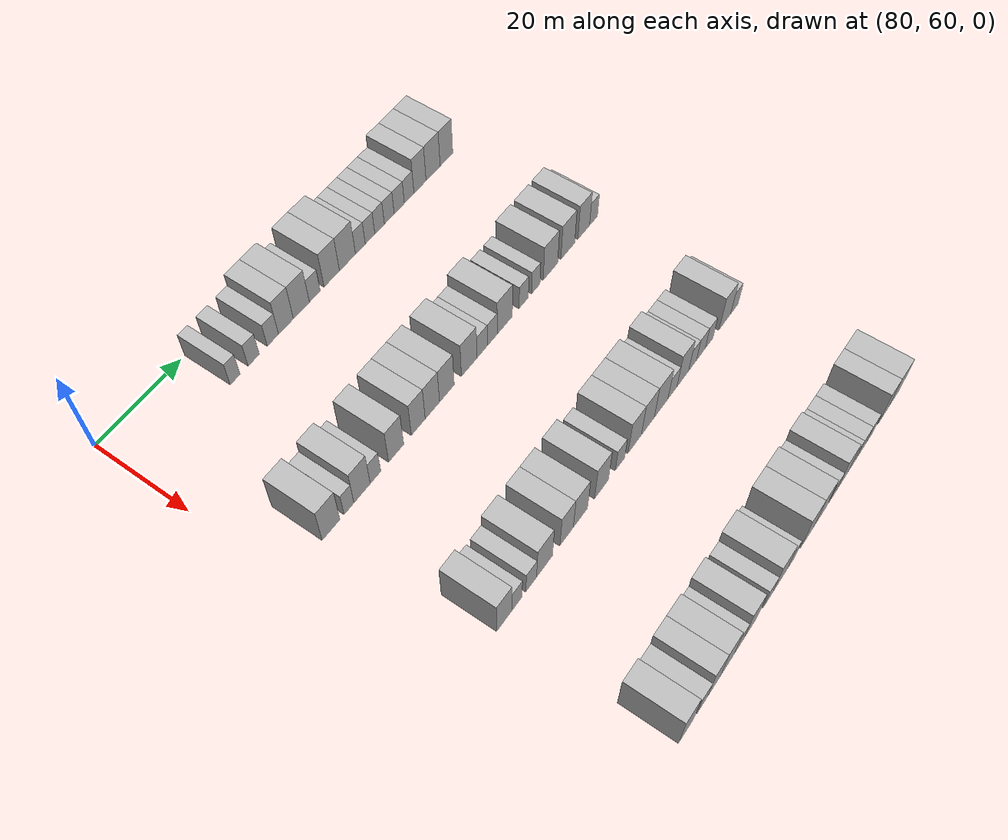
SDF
<sdf version="1.6">
 <world name="default">
  <model name="building_585">
   <static>1</static>
   <pose>85.0000 82.1255 0 0.000000 0.000000 0.000000</pose>
   <link name="link">
    <pose>0 0 3.00 0 0 0</pose>
    <collision name="collision"><geometry><box><size>10.0000 2.4287 6.0000</size></box></geometry></collision>
    <visual name="visual">
     <cast_shadows>0</cast_shadows>
     <geometry><box><size>10.0000 2.4287 6.0000</size></box></geometry>
     <material>
      <script>
       <uri>model://HANNAS_wall/materials/scripts</uri>
       <uri>model://HANNAS_wall/materials/textures</uri>
       <name>vrc/HANNAS_wall</name>
      </script>
     </material>
    </visual>
   </link>
  </model>
  <model name="building_586">
   <static>1</static>
   <pose>85.0000 86.7461 0 0.000000 0.000000 0.000000</pose>
   <link name="link">
    <pose>0 0 3.00 0 0 0</pose>
    <collision name="collision"><geometry><box><size>10.0000 2.8125 6.0000</size></box></geometry></collision>
    <visual name="visual">
     <cast_shadows>0</cast_shadows>
     <geometry><box><size>10.0000 2.8125 6.0000</size></box></geometry>
     <material>
      <script>
       <uri>model://HANNAS_wall/materials/scripts</uri>
       <uri>model://HANNAS_wall/materials/textures</uri>
       <name>vrc/HANNAS_wall</name>
      </script>
     </material>
    </visual>
   </link>
  </model>
  <model name="building_587">
   <static>1</static>
   <pose>85.0000 91.5967 0 0.000000 0.000000 0.000000</pose>
   <link name="link">
    <pose>0 0 3.00 0 0 0</pose>
    <collision name="collision"><geometry><box><size>10.0000 2.8886 6.0000</size></box></geometry></collision>
    <visual name="visual">
     <cast_shadows>0</cast_shadows>
     <geometry><box><size>10.0000 2.8886 6.0000</size></box></geometry>
     <material>
      <script>
       <uri>model://HANNAS_wall/materials/scripts</uri>
       <uri>model://HANNAS_wall/materials/textures</uri>
       <name>vrc/HANNAS_wall</name>
      </script>
     </material>
    </visual>
   </link>
  </model>
  <model name="building_588">
   <static>1</static>
   <pose>85.0000 94.9710 0 0.000000 0.000000 0.000000</pose>
   <link name="link">
    <pose>0 0 4.50 0 0 0</pose>
    <collision name="collision"><geometry><box><size>10.0000 3.8599 9.0000</size></box></geometry></collision>
    <visual name="visual">
     <cast_shadows>0</cast_shadows>
     <geometry><box><size>10.0000 3.8599 9.0000</size></box></geometry>
     <material>
      <script>
       <uri>model://HANNAS_wall/materials/scripts</uri>
       <uri>model://HANNAS_wall/materials/textures</uri>
       <name>vrc/HANNAS_wall</name>
      </script>
     </material>
    </visual>
   </link>
  </model>
  <model name="building_589">
   <static>1</static>
   <pose>85.0000 99.0133 0 0.000000 0.000000 0.000000</pose>
   <link name="link">
    <pose>0 0 4.50 0 0 0</pose>
    <collision name="collision"><geometry><box><size>10.0000 4.2247 9.0000</size></box></geometry></collision>
    <visual name="visual">
     <cast_shadows>0</cast_shadows>
     <geometry><box><size>10.0000 4.2247 9.0000</size></box></geometry>
     <material>
      <script>
       <uri>model://HANNAS_wall/materials/scripts</uri>
       <uri>model://HANNAS_wall/materials/textures</uri>
       <name>vrc/HANNAS_wall</name>
      </script>
     </material>
    </visual>
   </link>
  </model>
  <model name="building_590">
   <static>1</static>
   <pose>85.0000 102.5777 0 0.000000 0.000000 0.000000</pose>
   <link name="link">
    <pose>0 0 3.00 0 0 0</pose>
    <collision name="collision"><geometry><box><size>10.0000 2.9041 6.0000</size></box></geometry></collision>
    <visual name="visual">
     <cast_shadows>0</cast_shadows>
     <geometry><box><size>10.0000 2.9041 6.0000</size></box></geometry>
     <material>
      <script>
       <uri>model://HANNAS_wall/materials/scripts</uri>
       <uri>model://HANNAS_wall/materials/textures</uri>
       <name>vrc/HANNAS_wall</name>
      </script>
     </material>
    </visual>
   </link>
  </model>
  <model name="building_591">
   <static>1</static>
   <pose>85.0000 107.1313 0 0.000000 0.000000 0.000000</pose>
   <link name="link">
    <pose>0 0 4.50 0 0 0</pose>
    <collision name="collision"><geometry><box><size>10.0000 4.2031 9.0000</size></box></geometry></collision>
    <visual name="visual">
     <cast_shadows>0</cast_shadows>
     <geometry><box><size>10.0000 4.2031 9.0000</size></box></geometry>
     <material>
      <script>
       <uri>model://HANNAS_wall/materials/scripts</uri>
       <uri>model://HANNAS_wall/materials/textures</uri>
       <name>vrc/HANNAS_wall</name>
      </script>
     </material>
    </visual>
   </link>
  </model>
  <model name="building_592">
   <static>1</static>
   <pose>85.0000 111.4720 0 0.000000 0.000000 0.000000</pose>
   <link name="link">
    <pose>0 0 4.50 0 0 0</pose>
    <collision name="collision"><geometry><box><size>10.0000 4.4783 9.0000</size></box></geometry></collision>
    <visual name="visual">
     <cast_shadows>0</cast_shadows>
     <geometry><box><size>10.0000 4.4783 9.0000</size></box></geometry>
     <material>
      <script>
       <uri>model://HANNAS_wall/materials/scripts</uri>
       <uri>model://HANNAS_wall/materials/textures</uri>
       <name>vrc/HANNAS_wall</name>
      </script>
     </material>
    </visual>
   </link>
  </model>
  <model name="building_593">
   <static>1</static>
   <pose>85.0000 115.0771 0 0.000000 0.000000 0.000000</pose>
   <link name="link">
    <pose>0 0 3.00 0 0 0</pose>
    <collision name="collision"><geometry><box><size>10.0000 2.7319 6.0000</size></box></geometry></collision>
    <visual name="visual">
     <cast_shadows>0</cast_shadows>
     <geometry><box><size>10.0000 2.7319 6.0000</size></box></geometry>
     <material>
      <script>
       <uri>model://HANNAS_wall/materials/scripts</uri>
       <uri>model://HANNAS_wall/materials/textures</uri>
       <name>vrc/HANNAS_wall</name>
      </script>
     </material>
    </visual>
   </link>
  </model>
  <model name="building_594">
   <static>1</static>
   <pose>85.0000 117.8040 0 0.000000 0.000000 0.000000</pose>
   <link name="link">
    <pose>0 0 3.00 0 0 0</pose>
    <collision name="collision"><geometry><box><size>10.0000 2.7219 6.0000</size></box></geometry></collision>
    <visual name="visual">
     <cast_shadows>0</cast_shadows>
     <geometry><box><size>10.0000 2.7219 6.0000</size></box></geometry>
     <material>
      <script>
       <uri>model://HANNAS_wall/materials/scripts</uri>
       <uri>model://HANNAS_wall/materials/textures</uri>
       <name>vrc/HANNAS_wall</name>
      </script>
     </material>
    </visual>
   </link>
  </model>
  <model name="building_595">
   <static>1</static>
   <pose>85.0000 120.5294 0 0.000000 0.000000 0.000000</pose>
   <link name="link">
    <pose>0 0 3.00 0 0 0</pose>
    <collision name="collision"><geometry><box><size>10.0000 2.7290 6.0000</size></box></geometry></collision>
    <visual name="visual">
     <cast_shadows>0</cast_shadows>
     <geometry><box><size>10.0000 2.7290 6.0000</size></box></geometry>
     <material>
      <script>
       <uri>model://HANNAS_wall/materials/scripts</uri>
       <uri>model://HANNAS_wall/materials/textures</uri>
       <name>vrc/HANNAS_wall</name>
      </script>
     </material>
    </visual>
   </link>
  </model>
  <model name="building_596">
   <static>1</static>
   <pose>85.0000 123.3190 0 0.000000 0.000000 0.000000</pose>
   <link name="link">
    <pose>0 0 3.00 0 0 0</pose>
    <collision name="collision"><geometry><box><size>10.0000 2.8501 6.0000</size></box></geometry></collision>
    <visual name="visual">
     <cast_shadows>0</cast_shadows>
     <geometry><box><size>10.0000 2.8501 6.0000</size></box></geometry>
     <material>
      <script>
       <uri>model://HANNAS_wall/materials/scripts</uri>
       <uri>model://HANNAS_wall/materials/textures</uri>
       <name>vrc/HANNAS_wall</name>
      </script>
     </material>
    </visual>
   </link>
  </model>
  <model name="building_597">
   <static>1</static>
   <pose>85.0000 126.2328 0 0.000000 0.000000 0.000000</pose>
   <link name="link">
    <pose>0 0 3.00 0 0 0</pose>
    <collision name="collision"><geometry><box><size>10.0000 2.9776 6.0000</size></box></geometry></collision>
    <visual name="visual">
     <cast_shadows>0</cast_shadows>
     <geometry><box><size>10.0000 2.9776 6.0000</size></box></geometry>
     <material>
      <script>
       <uri>model://HANNAS_wall/materials/scripts</uri>
       <uri>model://HANNAS_wall/materials/textures</uri>
       <name>vrc/HANNAS_wall</name>
      </script>
     </material>
    </visual>
   </link>
  </model>
  <model name="building_598">
   <static>1</static>
   <pose>85.0000 129.1467 0 0.000000 0.000000 0.000000</pose>
   <link name="link">
    <pose>0 0 3.00 0 0 0</pose>
    <collision name="collision"><geometry><box><size>10.0000 2.8500 6.0000</size></box></geometry></collision>
    <visual name="visual">
     <cast_shadows>0</cast_shadows>
     <geometry><box><size>10.0000 2.8500 6.0000</size></box></geometry>
     <material>
      <script>
       <uri>model://HANNAS_wall/materials/scripts</uri>
       <uri>model://HANNAS_wall/materials/textures</uri>
       <name>vrc/HANNAS_wall</name>
      </script>
     </material>
    </visual>
   </link>
  </model>
  <model name="building_599">
   <static>1</static>
   <pose>85.0000 132.3991 0 0.000000 0.000000 0.000000</pose>
   <link name="link">
    <pose>0 0 4.50 0 0 0</pose>
    <collision name="collision"><geometry><box><size>10.0000 3.6549 9.0000</size></box></geometry></collision>
    <visual name="visual">
     <cast_shadows>0</cast_shadows>
     <geometry><box><size>10.0000 3.6549 9.0000</size></box></geometry>
     <material>
      <script>
       <uri>model://HANNAS_wall/materials/scripts</uri>
       <uri>model://HANNAS_wall/materials/textures</uri>
       <name>vrc/HANNAS_wall</name>
      </script>
     </material>
    </visual>
   </link>
  </model>
  <model name="building_600">
   <static>1</static>
   <pose>85.0000 136.3751 0 0.000000 0.000000 0.000000</pose>
   <link name="link">
    <pose>0 0 4.50 0 0 0</pose>
    <collision name="collision"><geometry><box><size>10.0000 4.2972 9.0000</size></box></geometry></collision>
    <visual name="visual">
     <cast_shadows>0</cast_shadows>
     <geometry><box><size>10.0000 4.2972 9.0000</size></box></geometry>
     <material>
      <script>
       <uri>model://HANNAS_wall/materials/scripts</uri>
       <uri>model://HANNAS_wall/materials/textures</uri>
       <name>vrc/HANNAS_wall</name>
      </script>
     </material>
    </visual>
   </link>
  </model>
  <model name="building_601">
   <static>1</static>
   <pose>85.0000 140.4750 0 0.000000 0.000000 0.000000</pose>
   <link name="link">
    <pose>0 0 4.50 0 0 0</pose>
    <collision name="collision"><geometry><box><size>10.0000 3.9025 9.0000</size></box></geometry></collision>
    <visual name="visual">
     <cast_shadows>0</cast_shadows>
     <geometry><box><size>10.0000 3.9025 9.0000</size></box></geometry>
     <material>
      <script>
       <uri>model://HANNAS_wall/materials/scripts</uri>
       <uri>model://HANNAS_wall/materials/textures</uri>
       <name>vrc/HANNAS_wall</name>
      </script>
     </material>
    </visual>
   </link>
  </model>
  <model name="building_802">
   <static>1</static>
   <pose>115.0000 70.1069 0 0.000000 0.000000 0.000000</pose>
   <link name="link">
    <pose>0 0 4.50 0 0 0</pose>
    <collision name="collision"><geometry><box><size>10.0000 4.2840 9.0000</size></box></geometry></collision>
    <visual name="visual">
     <cast_shadows>0</cast_shadows>
     <geometry><box><size>10.0000 4.2840 9.0000</size></box></geometry>
     <material>
      <script>
       <uri>model://HANNAS_wall/materials/scripts</uri>
       <uri>model://HANNAS_wall/materials/textures</uri>
       <name>vrc/HANNAS_wall</name>
      </script>
     </material>
    </visual>
   </link>
  </model>
  <model name="building_803">
   <static>1</static>
   <pose>115.0000 74.4590 0 0.000000 0.000000 0.000000</pose>
   <link name="link">
    <pose>0 0 3.00 0 0 0</pose>
    <collision name="collision"><geometry><box><size>10.0000 2.4203 6.0000</size></box></geometry></collision>
    <visual name="visual">
     <cast_shadows>0</cast_shadows>
     <geometry><box><size>10.0000 2.4203 6.0000</size></box></geometry>
     <material>
      <script>
       <uri>model://HANNAS_wall/materials/scripts</uri>
       <uri>model://HANNAS_wall/materials/textures</uri>
       <name>vrc/HANNAS_wall</name>
      </script>
     </material>
    </visual>
   </link>
  </model>
  <model name="building_804">
   <static>1</static>
   <pose>115.0000 77.7041 0 0.000000 0.000000 0.000000</pose>
   <link name="link">
    <pose>0 0 4.50 0 0 0</pose>
    <collision name="collision"><geometry><box><size>10.0000 4.0697 9.0000</size></box></geometry></collision>
    <visual name="visual">
     <cast_shadows>0</cast_shadows>
     <geometry><box><size>10.0000 4.0697 9.0000</size></box></geometry>
     <material>
      <script>
       <uri>model://HANNAS_wall/materials/scripts</uri>
       <uri>model://HANNAS_wall/materials/textures</uri>
       <name>vrc/HANNAS_wall</name>
      </script>
     </material>
    </visual>
   </link>
  </model>
  <model name="building_805">
   <static>1</static>
   <pose>115.0000 81.0676 0 0.000000 0.000000 0.000000</pose>
   <link name="link">
    <pose>0 0 3.00 0 0 0</pose>
    <collision name="collision"><geometry><box><size>10.0000 2.6573 6.0000</size></box></geometry></collision>
    <visual name="visual">
     <cast_shadows>0</cast_shadows>
     <geometry><box><size>10.0000 2.6573 6.0000</size></box></geometry>
     <material>
      <script>
       <uri>model://HANNAS_wall/materials/scripts</uri>
       <uri>model://HANNAS_wall/materials/textures</uri>
       <name>vrc/HANNAS_wall</name>
      </script>
     </material>
    </visual>
   </link>
  </model>
  <model name="building_806">
   <static>1</static>
   <pose>115.0000 86.3483 0 0.000000 0.000000 0.000000</pose>
   <link name="link">
    <pose>0 0 4.50 0 0 0</pose>
    <collision name="collision"><geometry><box><size>10.0000 3.9041 9.0000</size></box></geometry></collision>
    <visual name="visual">
     <cast_shadows>0</cast_shadows>
     <geometry><box><size>10.0000 3.9041 9.0000</size></box></geometry>
     <material>
      <script>
       <uri>model://HANNAS_wall/materials/scripts</uri>
       <uri>model://HANNAS_wall/materials/textures</uri>
       <name>vrc/HANNAS_wall</name>
      </script>
     </material>
    </visual>
   </link>
  </model>
  <model name="building_807">
   <static>1</static>
   <pose>115.0000 92.1414 0 0.000000 0.000000 0.000000</pose>
   <link name="link">
    <pose>0 0 4.50 0 0 0</pose>
    <collision name="collision"><geometry><box><size>10.0000 3.6822 9.0000</size></box></geometry></collision>
    <visual name="visual">
     <cast_shadows>0</cast_shadows>
     <geometry><box><size>10.0000 3.6822 9.0000</size></box></geometry>
     <material>
      <script>
       <uri>model://HANNAS_wall/materials/scripts</uri>
       <uri>model://HANNAS_wall/materials/textures</uri>
       <name>vrc/HANNAS_wall</name>
      </script>
     </material>
    </visual>
   </link>
  </model>
  <model name="building_808">
   <static>1</static>
   <pose>115.0000 95.9185 0 0.000000 0.000000 0.000000</pose>
   <link name="link">
    <pose>0 0 4.50 0 0 0</pose>
    <collision name="collision"><geometry><box><size>10.0000 3.8719 9.0000</size></box></geometry></collision>
    <visual name="visual">
     <cast_shadows>0</cast_shadows>
     <geometry><box><size>10.0000 3.8719 9.0000</size></box></geometry>
     <material>
      <script>
       <uri>model://HANNAS_wall/materials/scripts</uri>
       <uri>model://HANNAS_wall/materials/textures</uri>
       <name>vrc/HANNAS_wall</name>
      </script>
     </material>
    </visual>
   </link>
  </model>
  <model name="building_809">
   <static>1</static>
   <pose>115.0000 99.8624 0 0.000000 0.000000 0.000000</pose>
   <link name="link">
    <pose>0 0 4.50 0 0 0</pose>
    <collision name="collision"><geometry><box><size>10.0000 4.0159 9.0000</size></box></geometry></collision>
    <visual name="visual">
     <cast_shadows>0</cast_shadows>
     <geometry><box><size>10.0000 4.0159 9.0000</size></box></geometry>
     <material>
      <script>
       <uri>model://HANNAS_wall/materials/scripts</uri>
       <uri>model://HANNAS_wall/materials/textures</uri>
       <name>vrc/HANNAS_wall</name>
      </script>
     </material>
    </visual>
   </link>
  </model>
  <model name="building_810">
   <static>1</static>
   <pose>115.0000 106.0690 0 0.000000 0.000000 0.000000</pose>
   <link name="link">
    <pose>0 0 4.50 0 0 0</pose>
    <collision name="collision"><geometry><box><size>10.0000 4.3972 9.0000</size></box></geometry></collision>
    <visual name="visual">
     <cast_shadows>0</cast_shadows>
     <geometry><box><size>10.0000 4.3972 9.0000</size></box></geometry>
     <material>
      <script>
       <uri>model://HANNAS_wall/materials/scripts</uri>
       <uri>model://HANNAS_wall/materials/textures</uri>
       <name>vrc/HANNAS_wall</name>
      </script>
     </material>
    </visual>
   </link>
  </model>
  <model name="building_811">
   <static>1</static>
   <pose>115.0000 109.7655 0 0.000000 0.000000 0.000000</pose>
   <link name="link">
    <pose>0 0 3.00 0 0 0</pose>
    <collision name="collision"><geometry><box><size>10.0000 2.9959 6.0000</size></box></geometry></collision>
    <visual name="visual">
     <cast_shadows>0</cast_shadows>
     <geometry><box><size>10.0000 2.9959 6.0000</size></box></geometry>
     <material>
      <script>
       <uri>model://HANNAS_wall/materials/scripts</uri>
       <uri>model://HANNAS_wall/materials/textures</uri>
       <name>vrc/HANNAS_wall</name>
      </script>
     </material>
    </visual>
   </link>
  </model>
  <model name="building_812">
   <static>1</static>
   <pose>115.0000 112.6629 0 0.000000 0.000000 0.000000</pose>
   <link name="link">
    <pose>0 0 3.00 0 0 0</pose>
    <collision name="collision"><geometry><box><size>10.0000 2.7988 6.0000</size></box></geometry></collision>
    <visual name="visual">
     <cast_shadows>0</cast_shadows>
     <geometry><box><size>10.0000 2.7988 6.0000</size></box></geometry>
     <material>
      <script>
       <uri>model://HANNAS_wall/materials/scripts</uri>
       <uri>model://HANNAS_wall/materials/textures</uri>
       <name>vrc/HANNAS_wall</name>
      </script>
     </material>
    </visual>
   </link>
  </model>
  <model name="building_813">
   <static>1</static>
   <pose>115.0000 116.2817 0 0.000000 0.000000 0.000000</pose>
   <link name="link">
    <pose>0 0 4.50 0 0 0</pose>
    <collision name="collision"><geometry><box><size>10.0000 4.4386 9.0000</size></box></geometry></collision>
    <visual name="visual">
     <cast_shadows>0</cast_shadows>
     <geometry><box><size>10.0000 4.4386 9.0000</size></box></geometry>
     <material>
      <script>
       <uri>model://HANNAS_wall/materials/scripts</uri>
       <uri>model://HANNAS_wall/materials/textures</uri>
       <name>vrc/HANNAS_wall</name>
      </script>
     </material>
    </visual>
   </link>
  </model>
  <model name="building_814">
   <static>1</static>
   <pose>115.0000 121.8972 0 0.000000 0.000000 0.000000</pose>
   <link name="link">
    <pose>0 0 3.00 0 0 0</pose>
    <collision name="collision"><geometry><box><size>10.0000 2.7925 6.0000</size></box></geometry></collision>
    <visual name="visual">
     <cast_shadows>0</cast_shadows>
     <geometry><box><size>10.0000 2.7925 6.0000</size></box></geometry>
     <material>
      <script>
       <uri>model://HANNAS_wall/materials/scripts</uri>
       <uri>model://HANNAS_wall/materials/textures</uri>
       <name>vrc/HANNAS_wall</name>
      </script>
     </material>
    </visual>
   </link>
  </model>
  <model name="building_815">
   <static>1</static>
   <pose>115.0000 125.5632 0 0.000000 0.000000 0.000000</pose>
   <link name="link">
    <pose>0 0 3.00 0 0 0</pose>
    <collision name="collision"><geometry><box><size>10.0000 2.5395 6.0000</size></box></geometry></collision>
    <visual name="visual">
     <cast_shadows>0</cast_shadows>
     <geometry><box><size>10.0000 2.5395 6.0000</size></box></geometry>
     <material>
      <script>
       <uri>model://HANNAS_wall/materials/scripts</uri>
       <uri>model://HANNAS_wall/materials/textures</uri>
       <name>vrc/HANNAS_wall</name>
      </script>
     </material>
    </visual>
   </link>
  </model>
  <model name="building_816">
   <static>1</static>
   <pose>115.0000 130.0789 0 0.000000 0.000000 0.000000</pose>
   <link name="link">
    <pose>0 0 4.50 0 0 0</pose>
    <collision name="collision"><geometry><box><size>10.0000 4.4918 9.0000</size></box></geometry></collision>
    <visual name="visual">
     <cast_shadows>0</cast_shadows>
     <geometry><box><size>10.0000 4.4918 9.0000</size></box></geometry>
     <material>
      <script>
       <uri>model://HANNAS_wall/materials/scripts</uri>
       <uri>model://HANNAS_wall/materials/textures</uri>
       <name>vrc/HANNAS_wall</name>
      </script>
     </material>
    </visual>
   </link>
  </model>
  <model name="building_817">
   <static>1</static>
   <pose>115.0000 135.5179 0 0.000000 0.000000 0.000000</pose>
   <link name="link">
    <pose>0 0 4.50 0 0 0</pose>
    <collision name="collision"><geometry><box><size>10.0000 4.3863 9.0000</size></box></geometry></collision>
    <visual name="visual">
     <cast_shadows>0</cast_shadows>
     <geometry><box><size>10.0000 4.3863 9.0000</size></box></geometry>
     <material>
      <script>
       <uri>model://HANNAS_wall/materials/scripts</uri>
       <uri>model://HANNAS_wall/materials/textures</uri>
       <name>vrc/HANNAS_wall</name>
      </script>
     </material>
    </visual>
   </link>
  </model>
  <model name="building_818">
   <static>1</static>
   <pose>115.0000 140.6104 0 0.000000 0.000000 0.000000</pose>
   <link name="link">
    <pose>0 0 4.50 0 0 0</pose>
    <collision name="collision"><geometry><box><size>10.0000 3.7988 9.0000</size></box></geometry></collision>
    <visual name="visual">
     <cast_shadows>0</cast_shadows>
     <geometry><box><size>10.0000 3.7988 9.0000</size></box></geometry>
     <material>
      <script>
       <uri>model://HANNAS_wall/materials/scripts</uri>
       <uri>model://HANNAS_wall/materials/textures</uri>
       <name>vrc/HANNAS_wall</name>
      </script>
     </material>
    </visual>
   </link>
  </model>
  <model name="building_819">
   <static>1</static>
   <pose>115.0000 143.8060 0 0.000000 0.000000 0.000000</pose>
   <link name="link">
    <pose>0 0 3.00 0 0 0</pose>
    <collision name="collision"><geometry><box><size>10.0000 2.5924 6.0000</size></box></geometry></collision>
    <visual name="visual">
     <cast_shadows>0</cast_shadows>
     <geometry><box><size>10.0000 2.5924 6.0000</size></box></geometry>
     <material>
      <script>
       <uri>model://HANNAS_wall/materials/scripts</uri>
       <uri>model://HANNAS_wall/materials/textures</uri>
       <name>vrc/HANNAS_wall</name>
      </script>
     </material>
    </visual>
   </link>
  </model>
  <model name="building_1025">
   <static>1</static>
   <pose>145.0000 73.2077 0 0.000000 0.000000 0.000000</pose>
   <link name="link">
    <pose>0 0 4.50 0 0 0</pose>
    <collision name="collision"><geometry><box><size>10.0000 3.8399 9.0000</size></box></geometry></collision>
    <visual name="visual">
     <cast_shadows>0</cast_shadows>
     <geometry><box><size>10.0000 3.8399 9.0000</size></box></geometry>
     <material>
      <script>
       <uri>model://HANNAS_wall/materials/scripts</uri>
       <uri>model://HANNAS_wall/materials/textures</uri>
       <name>vrc/HANNAS_wall</name>
      </script>
     </material>
    </visual>
   </link>
  </model>
  <model name="building_1026">
   <static>1</static>
   <pose>145.0000 76.4553 0 0.000000 0.000000 0.000000</pose>
   <link name="link">
    <pose>0 0 3.00 0 0 0</pose>
    <collision name="collision"><geometry><box><size>10.0000 2.6553 6.0000</size></box></geometry></collision>
    <visual name="visual">
     <cast_shadows>0</cast_shadows>
     <geometry><box><size>10.0000 2.6553 6.0000</size></box></geometry>
     <material>
      <script>
       <uri>model://HANNAS_wall/materials/scripts</uri>
       <uri>model://HANNAS_wall/materials/textures</uri>
       <name>vrc/HANNAS_wall</name>
      </script>
     </material>
    </visual>
   </link>
  </model>
  <model name="building_1027">
   <static>1</static>
   <pose>145.0000 80.1863 0 0.000000 0.000000 0.000000</pose>
   <link name="link">
    <pose>0 0 3.00 0 0 0</pose>
    <collision name="collision"><geometry><box><size>10.0000 2.8067 6.0000</size></box></geometry></collision>
    <visual name="visual">
     <cast_shadows>0</cast_shadows>
     <geometry><box><size>10.0000 2.8067 6.0000</size></box></geometry>
     <material>
      <script>
       <uri>model://HANNAS_wall/materials/scripts</uri>
       <uri>model://HANNAS_wall/materials/textures</uri>
       <name>vrc/HANNAS_wall</name>
      </script>
     </material>
    </visual>
   </link>
  </model>
  <model name="building_1028">
   <static>1</static>
   <pose>145.0000 83.7250 0 0.000000 0.000000 0.000000</pose>
   <link name="link">
    <pose>0 0 4.50 0 0 0</pose>
    <collision name="collision"><geometry><box><size>10.0000 4.2707 9.0000</size></box></geometry></collision>
    <visual name="visual">
     <cast_shadows>0</cast_shadows>
     <geometry><box><size>10.0000 4.2707 9.0000</size></box></geometry>
     <material>
      <script>
       <uri>model://HANNAS_wall/materials/scripts</uri>
       <uri>model://HANNAS_wall/materials/textures</uri>
       <name>vrc/HANNAS_wall</name>
      </script>
     </material>
    </visual>
   </link>
  </model>
  <model name="building_1029">
   <static>1</static>
   <pose>145.0000 89.7128 0 0.000000 0.000000 0.000000</pose>
   <link name="link">
    <pose>0 0 4.50 0 0 0</pose>
    <collision name="collision"><geometry><box><size>10.0000 3.7047 9.0000</size></box></geometry></collision>
    <visual name="visual">
     <cast_shadows>0</cast_shadows>
     <geometry><box><size>10.0000 3.7047 9.0000</size></box></geometry>
     <material>
      <script>
       <uri>model://HANNAS_wall/materials/scripts</uri>
       <uri>model://HANNAS_wall/materials/textures</uri>
       <name>vrc/HANNAS_wall</name>
      </script>
     </material>
    </visual>
   </link>
  </model>
  <model name="building_1030">
   <static>1</static>
   <pose>145.0000 93.5481 0 0.000000 0.000000 0.000000</pose>
   <link name="link">
    <pose>0 0 4.50 0 0 0</pose>
    <collision name="collision"><geometry><box><size>10.0000 3.9660 9.0000</size></box></geometry></collision>
    <visual name="visual">
     <cast_shadows>0</cast_shadows>
     <geometry><box><size>10.0000 3.9660 9.0000</size></box></geometry>
     <material>
      <script>
       <uri>model://HANNAS_wall/materials/scripts</uri>
       <uri>model://HANNAS_wall/materials/textures</uri>
       <name>vrc/HANNAS_wall</name>
      </script>
     </material>
    </visual>
   </link>
  </model>
  <model name="building_1031">
   <static>1</static>
   <pose>145.0000 99.5264 0 0.000000 0.000000 0.000000</pose>
   <link name="link">
    <pose>0 0 4.50 0 0 0</pose>
    <collision name="collision"><geometry><box><size>10.0000 3.9906 9.0000</size></box></geometry></collision>
    <visual name="visual">
     <cast_shadows>0</cast_shadows>
     <geometry><box><size>10.0000 3.9906 9.0000</size></box></geometry>
     <material>
      <script>
       <uri>model://HANNAS_wall/materials/scripts</uri>
       <uri>model://HANNAS_wall/materials/textures</uri>
       <name>vrc/HANNAS_wall</name>
      </script>
     </material>
    </visual>
   </link>
  </model>
  <model name="building_1032">
   <static>1</static>
   <pose>145.0000 104.9043 0 0.000000 0.000000 0.000000</pose>
   <link name="link">
    <pose>0 0 3.00 0 0 0</pose>
    <collision name="collision"><geometry><box><size>10.0000 2.7650 6.0000</size></box></geometry></collision>
    <visual name="visual">
     <cast_shadows>0</cast_shadows>
     <geometry><box><size>10.0000 2.7650 6.0000</size></box></geometry>
     <material>
      <script>
       <uri>model://HANNAS_wall/materials/scripts</uri>
       <uri>model://HANNAS_wall/materials/textures</uri>
       <name>vrc/HANNAS_wall</name>
      </script>
     </material>
    </visual>
   </link>
  </model>
  <model name="building_1033">
   <static>1</static>
   <pose>145.0000 109.2876 0 0.000000 0.000000 0.000000</pose>
   <link name="link">
    <pose>0 0 4.50 0 0 0</pose>
    <collision name="collision"><geometry><box><size>10.0000 4.0017 9.0000</size></box></geometry></collision>
    <visual name="visual">
     <cast_shadows>0</cast_shadows>
     <geometry><box><size>10.0000 4.0017 9.0000</size></box></geometry>
     <material>
      <script>
       <uri>model://HANNAS_wall/materials/scripts</uri>
       <uri>model://HANNAS_wall/materials/textures</uri>
       <name>vrc/HANNAS_wall</name>
      </script>
     </material>
    </visual>
   </link>
  </model>
  <model name="building_1034">
   <static>1</static>
   <pose>145.0000 113.2615 0 0.000000 0.000000 0.000000</pose>
   <link name="link">
    <pose>0 0 4.50 0 0 0</pose>
    <collision name="collision"><geometry><box><size>10.0000 3.9459 9.0000</size></box></geometry></collision>
    <visual name="visual">
     <cast_shadows>0</cast_shadows>
     <geometry><box><size>10.0000 3.9459 9.0000</size></box></geometry>
     <material>
      <script>
       <uri>model://HANNAS_wall/materials/scripts</uri>
       <uri>model://HANNAS_wall/materials/textures</uri>
       <name>vrc/HANNAS_wall</name>
      </script>
     </material>
    </visual>
   </link>
  </model>
  <model name="building_1035">
   <static>1</static>
   <pose>145.0000 117.3630 0 0.000000 0.000000 0.000000</pose>
   <link name="link">
    <pose>0 0 4.50 0 0 0</pose>
    <collision name="collision"><geometry><box><size>10.0000 4.2571 9.0000</size></box></geometry></collision>
    <visual name="visual">
     <cast_shadows>0</cast_shadows>
     <geometry><box><size>10.0000 4.2571 9.0000</size></box></geometry>
     <material>
      <script>
       <uri>model://HANNAS_wall/materials/scripts</uri>
       <uri>model://HANNAS_wall/materials/textures</uri>
       <name>vrc/HANNAS_wall</name>
      </script>
     </material>
    </visual>
   </link>
  </model>
  <model name="building_1036">
   <static>1</static>
   <pose>145.0000 120.9271 0 0.000000 0.000000 0.000000</pose>
   <link name="link">
    <pose>0 0 3.00 0 0 0</pose>
    <collision name="collision"><geometry><box><size>10.0000 2.8712 6.0000</size></box></geometry></collision>
    <visual name="visual">
     <cast_shadows>0</cast_shadows>
     <geometry><box><size>10.0000 2.8712 6.0000</size></box></geometry>
     <material>
      <script>
       <uri>model://HANNAS_wall/materials/scripts</uri>
       <uri>model://HANNAS_wall/materials/textures</uri>
       <name>vrc/HANNAS_wall</name>
      </script>
     </material>
    </visual>
   </link>
  </model>
  <model name="building_1037">
   <static>1</static>
   <pose>145.0000 124.2290 0 0.000000 0.000000 0.000000</pose>
   <link name="link">
    <pose>0 0 4.50 0 0 0</pose>
    <collision name="collision"><geometry><box><size>10.0000 3.7326 9.0000</size></box></geometry></collision>
    <visual name="visual">
     <cast_shadows>0</cast_shadows>
     <geometry><box><size>10.0000 3.7326 9.0000</size></box></geometry>
     <material>
      <script>
       <uri>model://HANNAS_wall/materials/scripts</uri>
       <uri>model://HANNAS_wall/materials/textures</uri>
       <name>vrc/HANNAS_wall</name>
      </script>
     </material>
    </visual>
   </link>
  </model>
  <model name="building_1038">
   <static>1</static>
   <pose>145.0000 127.3704 0 0.000000 0.000000 0.000000</pose>
   <link name="link">
    <pose>0 0 3.00 0 0 0</pose>
    <collision name="collision"><geometry><box><size>10.0000 2.5501 6.0000</size></box></geometry></collision>
    <visual name="visual">
     <cast_shadows>0</cast_shadows>
     <geometry><box><size>10.0000 2.5501 6.0000</size></box></geometry>
     <material>
      <script>
       <uri>model://HANNAS_wall/materials/scripts</uri>
       <uri>model://HANNAS_wall/materials/textures</uri>
       <name>vrc/HANNAS_wall</name>
      </script>
     </material>
    </visual>
   </link>
  </model>
  <model name="building_1039">
   <static>1</static>
   <pose>145.0000 130.0685 0 0.000000 0.000000 0.000000</pose>
   <link name="link">
    <pose>0 0 3.00 0 0 0</pose>
    <collision name="collision"><geometry><box><size>10.0000 2.8463 6.0000</size></box></geometry></collision>
    <visual name="visual">
     <cast_shadows>0</cast_shadows>
     <geometry><box><size>10.0000 2.8463 6.0000</size></box></geometry>
     <material>
      <script>
       <uri>model://HANNAS_wall/materials/scripts</uri>
       <uri>model://HANNAS_wall/materials/textures</uri>
       <name>vrc/HANNAS_wall</name>
      </script>
     </material>
    </visual>
   </link>
  </model>
  <model name="building_1040">
   <static>1</static>
   <pose>145.0000 132.7916 0 0.000000 0.000000 0.000000</pose>
   <link name="link">
    <pose>0 0 3.00 0 0 0</pose>
    <collision name="collision"><geometry><box><size>10.0000 2.5998 6.0000</size></box></geometry></collision>
    <visual name="visual">
     <cast_shadows>0</cast_shadows>
     <geometry><box><size>10.0000 2.5998 6.0000</size></box></geometry>
     <material>
      <script>
       <uri>model://HANNAS_wall/materials/scripts</uri>
       <uri>model://HANNAS_wall/materials/textures</uri>
       <name>vrc/HANNAS_wall</name>
      </script>
     </material>
    </visual>
   </link>
  </model>
  <model name="building_1041">
   <static>1</static>
   <pose>145.0000 138.0533 0 0.000000 0.000000 0.000000</pose>
   <link name="link">
    <pose>0 0 4.50 0 0 0</pose>
    <collision name="collision"><geometry><box><size>10.0000 3.9238 9.0000</size></box></geometry></collision>
    <visual name="visual">
     <cast_shadows>0</cast_shadows>
     <geometry><box><size>10.0000 3.9238 9.0000</size></box></geometry>
     <material>
      <script>
       <uri>model://HANNAS_wall/materials/scripts</uri>
       <uri>model://HANNAS_wall/materials/textures</uri>
       <name>vrc/HANNAS_wall</name>
      </script>
     </material>
    </visual>
   </link>
  </model>
  <model name="building_1042">
   <static>1</static>
   <pose>145.0000 141.3085 0 0.000000 0.000000 0.000000</pose>
   <link name="link">
    <pose>0 0 3.00 0 0 0</pose>
    <collision name="collision"><geometry><box><size>10.0000 2.5866 6.0000</size></box></geometry></collision>
    <visual name="visual">
     <cast_shadows>0</cast_shadows>
     <geometry><box><size>10.0000 2.5866 6.0000</size></box></geometry>
     <material>
      <script>
       <uri>model://HANNAS_wall/materials/scripts</uri>
       <uri>model://HANNAS_wall/materials/textures</uri>
       <name>vrc/HANNAS_wall</name>
      </script>
     </material>
    </visual>
   </link>
  </model>
  <model name="building_1247">
   <static>1</static>
   <pose>175.0000 74.4503 0 0.000000 0.000000 0.000000</pose>
   <link name="link">
    <pose>0 0 4.50 0 0 0</pose>
    <collision name="collision"><geometry><box><size>10.0000 4.0307 9.0000</size></box></geometry></collision>
    <visual name="visual">
     <cast_shadows>0</cast_shadows>
     <geometry><box><size>10.0000 4.0307 9.0000</size></box></geometry>
     <material>
      <script>
       <uri>model://HANNAS_wall/materials/scripts</uri>
       <uri>model://HANNAS_wall/materials/textures</uri>
       <name>vrc/HANNAS_wall</name>
      </script>
     </material>
    </visual>
   </link>
  </model>
  <model name="building_1248">
   <static>1</static>
   <pose>175.0000 78.9184 0 0.000000 0.000000 0.000000</pose>
   <link name="link">
    <pose>0 0 3.00 0 0 0</pose>
    <collision name="collision"><geometry><box><size>10.0000 2.9055 6.0000</size></box></geometry></collision>
    <visual name="visual">
     <cast_shadows>0</cast_shadows>
     <geometry><box><size>10.0000 2.9055 6.0000</size></box></geometry>
     <material>
      <script>
       <uri>model://HANNAS_wall/materials/scripts</uri>
       <uri>model://HANNAS_wall/materials/textures</uri>
       <name>vrc/HANNAS_wall</name>
      </script>
     </material>
    </visual>
   </link>
  </model>
  <model name="building_1249">
   <static>1</static>
   <pose>175.0000 82.1752 0 0.000000 0.000000 0.000000</pose>
   <link name="link">
    <pose>0 0 4.50 0 0 0</pose>
    <collision name="collision"><geometry><box><size>10.0000 3.6080 9.0000</size></box></geometry></collision>
    <visual name="visual">
     <cast_shadows>0</cast_shadows>
     <geometry><box><size>10.0000 3.6080 9.0000</size></box></geometry>
     <material>
      <script>
       <uri>model://HANNAS_wall/materials/scripts</uri>
       <uri>model://HANNAS_wall/materials/textures</uri>
       <name>vrc/HANNAS_wall</name>
      </script>
     </material>
    </visual>
   </link>
  </model>
  <model name="building_1250">
   <static>1</static>
   <pose>175.0000 85.9664 0 0.000000 0.000000 0.000000</pose>
   <link name="link">
    <pose>0 0 4.50 0 0 0</pose>
    <collision name="collision"><geometry><box><size>10.0000 3.9744 9.0000</size></box></geometry></collision>
    <visual name="visual">
     <cast_shadows>0</cast_shadows>
     <geometry><box><size>10.0000 3.9744 9.0000</size></box></geometry>
     <material>
      <script>
       <uri>model://HANNAS_wall/materials/scripts</uri>
       <uri>model://HANNAS_wall/materials/textures</uri>
       <name>vrc/HANNAS_wall</name>
      </script>
     </material>
    </visual>
   </link>
  </model>
  <model name="building_1251">
   <static>1</static>
   <pose>175.0000 89.3990 0 0.000000 0.000000 0.000000</pose>
   <link name="link">
    <pose>0 0 3.00 0 0 0</pose>
    <collision name="collision"><geometry><box><size>10.0000 2.8909 6.0000</size></box></geometry></collision>
    <visual name="visual">
     <cast_shadows>0</cast_shadows>
     <geometry><box><size>10.0000 2.8909 6.0000</size></box></geometry>
     <material>
      <script>
       <uri>model://HANNAS_wall/materials/scripts</uri>
       <uri>model://HANNAS_wall/materials/textures</uri>
       <name>vrc/HANNAS_wall</name>
      </script>
     </material>
    </visual>
   </link>
  </model>
  <model name="building_1252">
   <static>1</static>
   <pose>175.0000 92.7940 0 0.000000 0.000000 0.000000</pose>
   <link name="link">
    <pose>0 0 4.50 0 0 0</pose>
    <collision name="collision"><geometry><box><size>10.0000 3.8991 9.0000</size></box></geometry></collision>
    <visual name="visual">
     <cast_shadows>0</cast_shadows>
     <geometry><box><size>10.0000 3.8991 9.0000</size></box></geometry>
     <material>
      <script>
       <uri>model://HANNAS_wall/materials/scripts</uri>
       <uri>model://HANNAS_wall/materials/textures</uri>
       <name>vrc/HANNAS_wall</name>
      </script>
     </material>
    </visual>
   </link>
  </model>
  <model name="building_1253">
   <static>1</static>
   <pose>175.0000 98.1200 0 0.000000 0.000000 0.000000</pose>
   <link name="link">
    <pose>0 0 3.00 0 0 0</pose>
    <collision name="collision"><geometry><box><size>10.0000 2.7528 6.0000</size></box></geometry></collision>
    <visual name="visual">
     <cast_shadows>0</cast_shadows>
     <geometry><box><size>10.0000 2.7528 6.0000</size></box></geometry>
     <material>
      <script>
       <uri>model://HANNAS_wall/materials/scripts</uri>
       <uri>model://HANNAS_wall/materials/textures</uri>
       <name>vrc/HANNAS_wall</name>
      </script>
     </material>
    </visual>
   </link>
  </model>
  <model name="building_1254">
   <static>1</static>
   <pose>175.0000 101.6925 0 0.000000 0.000000 0.000000</pose>
   <link name="link">
    <pose>0 0 4.50 0 0 0</pose>
    <collision name="collision"><geometry><box><size>10.0000 4.3921 9.0000</size></box></geometry></collision>
    <visual name="visual">
     <cast_shadows>0</cast_shadows>
     <geometry><box><size>10.0000 4.3921 9.0000</size></box></geometry>
     <material>
      <script>
       <uri>model://HANNAS_wall/materials/scripts</uri>
       <uri>model://HANNAS_wall/materials/textures</uri>
       <name>vrc/HANNAS_wall</name>
      </script>
     </material>
    </visual>
   </link>
  </model>
  <model name="building_1255">
   <static>1</static>
   <pose>175.0000 105.1752 0 0.000000 0.000000 0.000000</pose>
   <link name="link">
    <pose>0 0 3.00 0 0 0</pose>
    <collision name="collision"><geometry><box><size>10.0000 2.5733 6.0000</size></box></geometry></collision>
    <visual name="visual">
     <cast_shadows>0</cast_shadows>
     <geometry><box><size>10.0000 2.5733 6.0000</size></box></geometry>
     <material>
      <script>
       <uri>model://HANNAS_wall/materials/scripts</uri>
       <uri>model://HANNAS_wall/materials/textures</uri>
       <name>vrc/HANNAS_wall</name>
      </script>
     </material>
    </visual>
   </link>
  </model>
  <model name="building_1256">
   <static>1</static>
   <pose>175.0000 110.5891 0 0.000000 0.000000 0.000000</pose>
   <link name="link">
    <pose>0 0 4.50 0 0 0</pose>
    <collision name="collision"><geometry><box><size>10.0000 4.2545 9.0000</size></box></geometry></collision>
    <visual name="visual">
     <cast_shadows>0</cast_shadows>
     <geometry><box><size>10.0000 4.2545 9.0000</size></box></geometry>
     <material>
      <script>
       <uri>model://HANNAS_wall/materials/scripts</uri>
       <uri>model://HANNAS_wall/materials/textures</uri>
       <name>vrc/HANNAS_wall</name>
      </script>
     </material>
    </visual>
   </link>
  </model>
  <model name="building_1257">
   <static>1</static>
   <pose>175.0000 114.7334 0 0.000000 0.000000 0.000000</pose>
   <link name="link">
    <pose>0 0 4.50 0 0 0</pose>
    <collision name="collision"><geometry><box><size>10.0000 4.0340 9.0000</size></box></geometry></collision>
    <visual name="visual">
     <cast_shadows>0</cast_shadows>
     <geometry><box><size>10.0000 4.0340 9.0000</size></box></geometry>
     <material>
      <script>
       <uri>model://HANNAS_wall/materials/scripts</uri>
       <uri>model://HANNAS_wall/materials/textures</uri>
       <name>vrc/HANNAS_wall</name>
      </script>
     </material>
    </visual>
   </link>
  </model>
  <model name="building_1258">
   <static>1</static>
   <pose>175.0000 118.9810 0 0.000000 0.000000 0.000000</pose>
   <link name="link">
    <pose>0 0 3.00 0 0 0</pose>
    <collision name="collision"><geometry><box><size>10.0000 2.4613 6.0000</size></box></geometry></collision>
    <visual name="visual">
     <cast_shadows>0</cast_shadows>
     <geometry><box><size>10.0000 2.4613 6.0000</size></box></geometry>
     <material>
      <script>
       <uri>model://HANNAS_wall/materials/scripts</uri>
       <uri>model://HANNAS_wall/materials/textures</uri>
       <name>vrc/HANNAS_wall</name>
      </script>
     </material>
    </visual>
   </link>
  </model>
  <model name="building_1259">
   <static>1</static>
   <pose>175.0000 122.1661 0 0.000000 0.000000 0.000000</pose>
   <link name="link">
    <pose>0 0 4.50 0 0 0</pose>
    <collision name="collision"><geometry><box><size>10.0000 3.9087 9.0000</size></box></geometry></collision>
    <visual name="visual">
     <cast_shadows>0</cast_shadows>
     <geometry><box><size>10.0000 3.9087 9.0000</size></box></geometry>
     <material>
      <script>
       <uri>model://HANNAS_wall/materials/scripts</uri>
       <uri>model://HANNAS_wall/materials/textures</uri>
       <name>vrc/HANNAS_wall</name>
      </script>
     </material>
    </visual>
   </link>
  </model>
  <model name="building_1260">
   <static>1</static>
   <pose>175.0000 125.5662 0 0.000000 0.000000 0.000000</pose>
   <link name="link">
    <pose>0 0 3.00 0 0 0</pose>
    <collision name="collision"><geometry><box><size>10.0000 2.8916 6.0000</size></box></geometry></collision>
    <visual name="visual">
     <cast_shadows>0</cast_shadows>
     <geometry><box><size>10.0000 2.8916 6.0000</size></box></geometry>
     <material>
      <script>
       <uri>model://HANNAS_wall/materials/scripts</uri>
       <uri>model://HANNAS_wall/materials/textures</uri>
       <name>vrc/HANNAS_wall</name>
      </script>
     </material>
    </visual>
   </link>
  </model>
  <model name="building_1261">
   <static>1</static>
   <pose>175.0000 128.5071 0 0.000000 0.000000 0.000000</pose>
   <link name="link">
    <pose>0 0 3.00 0 0 0</pose>
    <collision name="collision"><geometry><box><size>10.0000 2.9901 6.0000</size></box></geometry></collision>
    <visual name="visual">
     <cast_shadows>0</cast_shadows>
     <geometry><box><size>10.0000 2.9901 6.0000</size></box></geometry>
     <material>
      <script>
       <uri>model://HANNAS_wall/materials/scripts</uri>
       <uri>model://HANNAS_wall/materials/textures</uri>
       <name>vrc/HANNAS_wall</name>
      </script>
     </material>
    </visual>
   </link>
  </model>
  <model name="building_1262">
   <static>1</static>
   <pose>175.0000 131.3614 0 0.000000 0.000000 0.000000</pose>
   <link name="link">
    <pose>0 0 3.00 0 0 0</pose>
    <collision name="collision"><geometry><box><size>10.0000 2.7184 6.0000</size></box></geometry></collision>
    <visual name="visual">
     <cast_shadows>0</cast_shadows>
     <geometry><box><size>10.0000 2.7184 6.0000</size></box></geometry>
     <material>
      <script>
       <uri>model://HANNAS_wall/materials/scripts</uri>
       <uri>model://HANNAS_wall/materials/textures</uri>
       <name>vrc/HANNAS_wall</name>
      </script>
     </material>
    </visual>
   </link>
  </model>
  <model name="building_1263">
   <static>1</static>
   <pose>175.0000 136.5407 0 0.000000 0.000000 0.000000</pose>
   <link name="link">
    <pose>0 0 4.50 0 0 0</pose>
    <collision name="collision"><geometry><box><size>10.0000 3.6402 9.0000</size></box></geometry></collision>
    <visual name="visual">
     <cast_shadows>0</cast_shadows>
     <geometry><box><size>10.0000 3.6402 9.0000</size></box></geometry>
     <material>
      <script>
       <uri>model://HANNAS_wall/materials/scripts</uri>
       <uri>model://HANNAS_wall/materials/textures</uri>
       <name>vrc/HANNAS_wall</name>
      </script>
     </material>
    </visual>
   </link>
  </model>
  <model name="building_1264">
   <static>1</static>
   <pose>175.0000 140.6020 0 0.000000 0.000000 0.000000</pose>
   <link name="link">
    <pose>0 0 4.50 0 0 0</pose>
    <collision name="collision"><geometry><box><size>10.0000 4.4824 9.0000</size></box></geometry></collision>
    <visual name="visual">
     <cast_shadows>0</cast_shadows>
     <geometry><box><size>10.0000 4.4824 9.0000</size></box></geometry>
     <material>
      <script>
       <uri>model://HANNAS_wall/materials/scripts</uri>
       <uri>model://HANNAS_wall/materials/textures</uri>
       <name>vrc/HANNAS_wall</name>
      </script>
     </material>
    </visual>
   </link>
  </model>
 </world>
</sdf>
